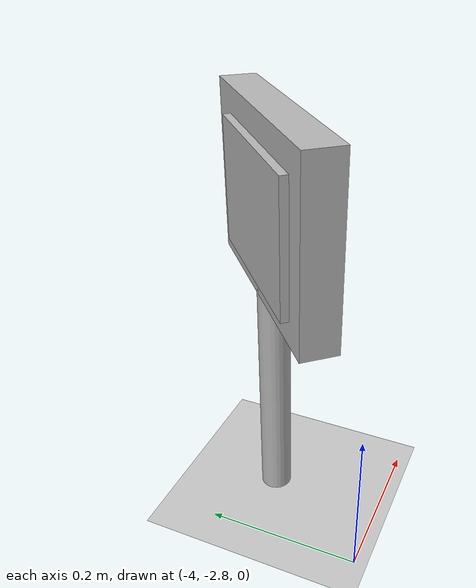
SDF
<sdf version="1.7">
 <world name="default">
  <model name="ground_plane">
   <static>1</static>
   <link name="link">
    <collision name="collision">
     <geometry><plane><normal>0 0 1</normal><size>100 100</size></plane></geometry>
     <surface>
      <contact><collide_bitmask>65535</collide_bitmask></contact>
      <friction><ode><mu>100</mu><mu2>50</mu2></ode></friction>
     </surface>
    </collision>
    <visual name="visual">
     <cast_shadows>0</cast_shadows>
     <geometry><plane><normal>0 0 1</normal><size>100 100</size></plane></geometry>
     <material>
      <script><uri>file://media/materials/scripts/gazebo.material</uri><name>Gazebo/Grey</name></script>
     </material>
    </visual>
   </link>
  </model>
  <model name="letrero_riego_II_2">
   <link name="link_0">
    <inertial>
     <mass>0.0543151</mass>
     <inertia>
      <ixx>4.90351e-06</ixx>
      <ixy>0</ixy>
      <ixz>0</ixz>
      <iyy>4.90351e-06</iyy>
      <iyz>0</iyz>
      <izz>1.12837e-07</izz>
     </inertia>
    </inertial>
    <pose>0.002515 0.005109 0.153562 0 -0 0</pose>
    <visual name="visual">
     <geometry><cylinder><radius>0.0203836</radius><length>0.327243</length></cylinder></geometry>
     <material>
      <lighting>1</lighting>
      <script>
       <uri>model://letrero_riego_II/madera/scripts</uri>
       <uri>model://letrero_riego_II/madera/textures</uri>
       <name>textur/madera</name>
      </script>
      <shader type="pixel"/>
      <emissive>0 0 0 1</emissive>
     </material>
    </visual>
    <collision name="collision">
     <geometry><cylinder><radius>0.020384</radius><length>0.327243</length></cylinder></geometry>
     <surface>
      <friction>
       <ode><mu>1</mu><mu2>1</mu2><fdir1>0 0 0</fdir1><slip1>0</slip1><slip2>0</slip2></ode>
       <torsional>
        <coefficient>1</coefficient>
        <patch_radius>0</patch_radius>
        <surface_radius>0</surface_radius>
        <use_patch_radius>1</use_patch_radius>
        <ode><slip>0</slip></ode>
       </torsional>
      </friction>
      <bounce><restitution_coefficient>0</restitution_coefficient><threshold>1e+06</threshold></bounce>
      <contact>
       <collide_without_contact>0</collide_without_contact>
       <collide_without_contact_bitmask>1</collide_without_contact_bitmask>
       <collide_bitmask>1</collide_bitmask>
       <ode>
        <soft_cfm>0</soft_cfm>
        <soft_erp>0.2</soft_erp>
        <kp>1e+13</kp>
        <kd>1</kd>
        <max_vel>0.01</max_vel>
        <min_depth>0</min_depth>
       </ode>
       <bullet>
        <split_impulse>1</split_impulse>
        <split_impulse_penetration_threshold>-0.01</split_impulse_penetration_threshold>
        <soft_cfm>0</soft_cfm>
        <soft_erp>0.2</soft_erp>
        <kp>1e+13</kp>
        <kd>1</kd>
       </bullet>
      </contact>
     </surface>
    </collision>
   </link>
   <link name="link_1">
    <inertial>
     <mass>0.00299633</mass>
     <inertia>
      <ixx>1.27855e-05</ixx>
      <ixy>0</ixy>
      <ixz>0</ixz>
      <iyy>3.42923e-05</iyy>
      <iyz>0</iyz>
      <izz>2.25402e-05</izz>
     </inertia>
    </inertial>
    <pose>-0.001542 0.002452 0.422031 0 -0 0</pose>
    <visual name="visual">
     <geometry><box><size>0.296988 0.04549 0.221665</size></box></geometry>
     <material>
      <lighting>1</lighting>
      <script>
       <uri>model://letrero_riego_II/madera/scripts</uri>
       <uri>model://letrero_riego_II/madera/textures</uri>
       <name>textur/madera</name>
      </script>
      <shader type="pixel"/>
      <emissive>0 0 0 1</emissive>
     </material>
    </visual>
    <collision name="collision">
     <geometry><box><size>0.296988 0.04549 0.221665</size></box></geometry>
     <surface>
      <friction>
       <ode><mu>1</mu><mu2>1</mu2><fdir1>0 0 0</fdir1><slip1>0</slip1><slip2>0</slip2></ode>
       <torsional>
        <coefficient>1</coefficient>
        <patch_radius>0</patch_radius>
        <surface_radius>0</surface_radius>
        <use_patch_radius>1</use_patch_radius>
        <ode><slip>0</slip></ode>
       </torsional>
      </friction>
      <bounce><restitution_coefficient>0</restitution_coefficient><threshold>1e+06</threshold></bounce>
      <contact>
       <collide_without_contact>0</collide_without_contact>
       <collide_without_contact_bitmask>1</collide_without_contact_bitmask>
       <collide_bitmask>1</collide_bitmask>
       <ode>
        <soft_cfm>0</soft_cfm>
        <soft_erp>0.2</soft_erp>
        <kp>1e+13</kp>
        <kd>1</kd>
        <max_vel>0.01</max_vel>
        <min_depth>0</min_depth>
       </ode>
       <bullet>
        <split_impulse>1</split_impulse>
        <split_impulse_penetration_threshold>-0.01</split_impulse_penetration_threshold>
        <soft_cfm>0</soft_cfm>
        <soft_erp>0.2</soft_erp>
        <kp>1e+13</kp>
        <kd>1</kd>
       </bullet>
      </contact>
     </surface>
    </collision>
   </link>
   <link name="link_2">
    <inertial>
     <mass>0.00173577</mass>
     <inertia>
      <ixx>4.23206e-06</ixx>
      <ixy>0</ixy>
      <ixz>0</ixz>
      <iyy>1.03921e-05</iyy>
      <iyz>0</iyz>
      <izz>7.37287e-06</izz>
     </inertia>
    </inertial>
    <pose>-0.010225 0.002657 0.421501 0 -0 0</pose>
    <visual name="visual">
     <geometry><box><size>0.216284 0.064749 0.15832</size></box></geometry>
     <material>
      <lighting>1</lighting>
      <script>
       <uri>model://letrero_riego_II/materials/scripts</uri>
       <uri>model://letrero_riego_II/materials/textures</uri>
       <name>textur/sisrie</name>
      </script>
      <shader type="pixel"/>
      <emissive>0 0 0 1</emissive>
     </material>
    </visual>
    <collision name="collision">
     <geometry><box><size>0.216284 0.064749 0.15832</size></box></geometry>
     <surface>
      <friction>
       <ode><mu>1</mu><mu2>1</mu2><fdir1>0 0 0</fdir1><slip1>0</slip1><slip2>0</slip2></ode>
       <torsional>
        <coefficient>1</coefficient>
        <patch_radius>0</patch_radius>
        <surface_radius>0</surface_radius>
        <use_patch_radius>1</use_patch_radius>
        <ode><slip>0</slip></ode>
       </torsional>
      </friction>
      <bounce><restitution_coefficient>0</restitution_coefficient><threshold>1e+06</threshold></bounce>
      <contact>
       <collide_without_contact>0</collide_without_contact>
       <collide_without_contact_bitmask>1</collide_without_contact_bitmask>
       <collide_bitmask>1</collide_bitmask>
       <ode>
        <soft_cfm>0</soft_cfm>
        <soft_erp>0.2</soft_erp>
        <kp>1e+13</kp>
        <kd>1</kd>
        <max_vel>0.01</max_vel>
        <min_depth>0</min_depth>
       </ode>
       <bullet>
        <split_impulse>1</split_impulse>
        <split_impulse_penetration_threshold>-0.01</split_impulse_penetration_threshold>
        <soft_cfm>0</soft_cfm>
        <soft_erp>0.2</soft_erp>
        <kp>1e+13</kp>
        <kd>1</kd>
       </bullet>
      </contact>
     </surface>
    </collision>
   </link>
   <joint name="link_0_JOINT_1" type="fixed">
    <parent>link_0</parent>
    <child>link_1</child>
    <physics>
     <ode><limit><cfm>0</cfm><erp>0.2</erp></limit><suspension><cfm>0</cfm><erp>0.2</erp></suspension></ode>
    </physics>
   </joint>
   <joint name="link_0_JOINT_2" type="fixed">
    <parent>link_0</parent>
    <child>link_2</child>
    <physics>
     <ode><limit><cfm>0</cfm><erp>0.2</erp></limit><suspension><cfm>0</cfm><erp>0.2</erp></suspension></ode>
    </physics>
   </joint>
   <static>1</static>
   <pose>-3.90155 -2.6537 0 0 -0 0.731036</pose>
  </model>
 </world>
</sdf>
